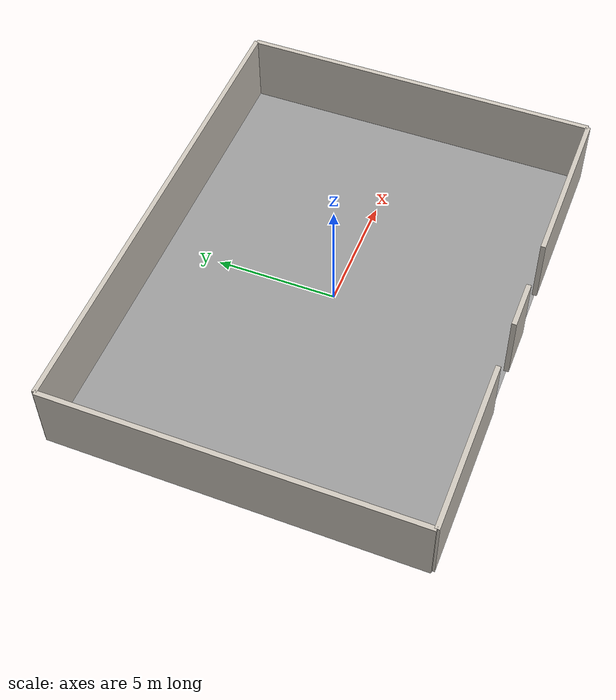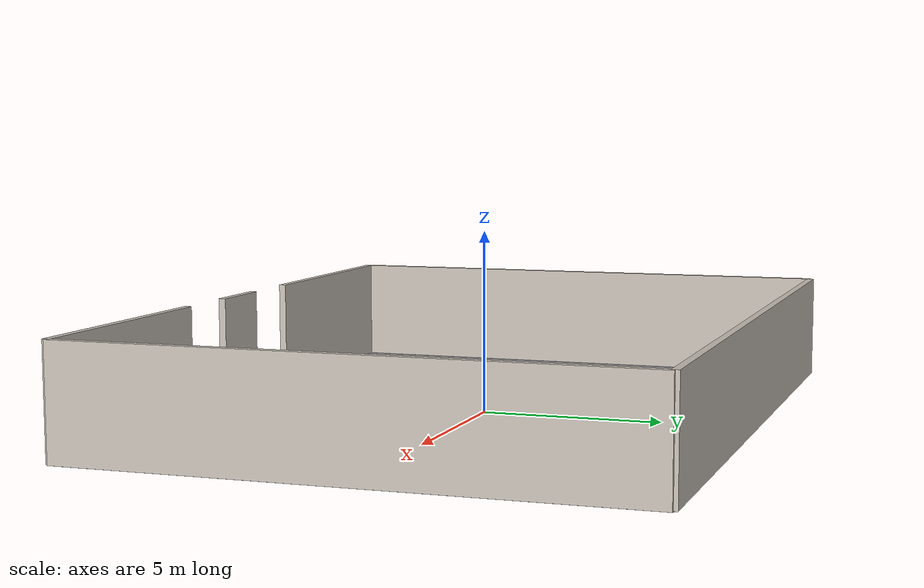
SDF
<?xml version="1.0"?>
<sdf version="1.6">
  <model name="warehouse_building">
    <static>true</static>

    <!-- Floor -->
    <link name="floor">
      <pose>0 0 0.0 0 0 0</pose>
      <visual name="visual">
        <geometry><plane><normal>0 0 1</normal><size>20 15</size></plane></geometry>
        <material>
          <ambient>0.55 0.55 0.55 1</ambient>
          <diffuse>0.6 0.6 0.6 1</diffuse>
        </material>
      </visual>
      <collision name="collision">
        <geometry><plane><normal>0 0 1</normal><size>20 15</size></plane></geometry>
      </collision>
    </link>

    <!-- North wall (back) -->
    <link name="north_wall">
      <pose>0 7.5 1.5 0 0 0</pose>
      <visual name="visual">
        <geometry><box><size>20 0.2 3.0</size></box></geometry>
        <material>
          <ambient>0.75 0.72 0.68 1</ambient>
          <diffuse>0.8 0.77 0.73 1</diffuse>
        </material>
      </visual>
      <collision name="collision">
        <geometry><box><size>20 0.2 3.0</size></box></geometry>
      </collision>
    </link>

    <!-- South wall (front, with dock door openings) -->
    <!-- Left segment -->
    <link name="south_wall_left">
      <pose>-6.5 -7.5 1.5 0 0 0</pose>
      <visual name="visual">
        <geometry><box><size>7 0.2 3.0</size></box></geometry>
        <material>
          <ambient>0.75 0.72 0.68 1</ambient>
          <diffuse>0.8 0.77 0.73 1</diffuse>
        </material>
      </visual>
      <collision name="collision">
        <geometry><box><size>7 0.2 3.0</size></box></geometry>
      </collision>
    </link>

    <!-- Center segment (between dock doors) -->
    <link name="south_wall_center">
      <pose>0 -7.5 1.5 0 0 0</pose>
      <visual name="visual">
        <geometry><box><size>2 0.2 3.0</size></box></geometry>
        <material>
          <ambient>0.75 0.72 0.68 1</ambient>
          <diffuse>0.8 0.77 0.73 1</diffuse>
        </material>
      </visual>
      <collision name="collision">
        <geometry><box><size>2 0.2 3.0</size></box></geometry>
      </collision>
    </link>

    <!-- Right segment -->
    <link name="south_wall_right">
      <pose>6.5 -7.5 1.5 0 0 0</pose>
      <visual name="visual">
        <geometry><box><size>7 0.2 3.0</size></box></geometry>
        <material>
          <ambient>0.75 0.72 0.68 1</ambient>
          <diffuse>0.8 0.77 0.73 1</diffuse>
        </material>
      </visual>
      <collision name="collision">
        <geometry><box><size>7 0.2 3.0</size></box></geometry>
      </collision>
    </link>

    <!-- East wall -->
    <link name="east_wall">
      <pose>10 0 1.5 0 0 0</pose>
      <visual name="visual">
        <geometry><box><size>0.2 15 3.0</size></box></geometry>
        <material>
          <ambient>0.75 0.72 0.68 1</ambient>
          <diffuse>0.8 0.77 0.73 1</diffuse>
        </material>
      </visual>
      <collision name="collision">
        <geometry><box><size>0.2 15 3.0</size></box></geometry>
      </collision>
    </link>

    <!-- West wall -->
    <link name="west_wall">
      <pose>-10 0 1.5 0 0 0</pose>
      <visual name="visual">
        <geometry><box><size>0.2 15 3.0</size></box></geometry>
        <material>
          <ambient>0.75 0.72 0.68 1</ambient>
          <diffuse>0.8 0.77 0.73 1</diffuse>
        </material>
      </visual>
      <collision name="collision">
        <geometry><box><size>0.2 15 3.0</size></box></geometry>
      </collision>
    </link>

  </model>
</sdf>
